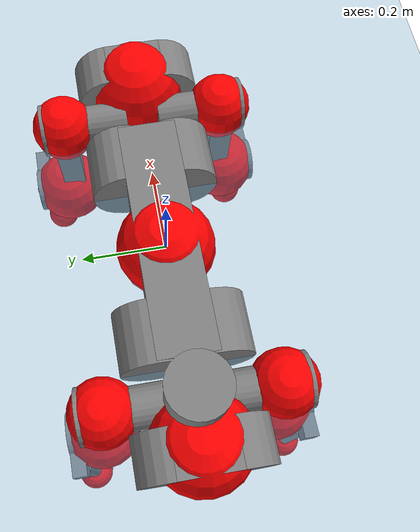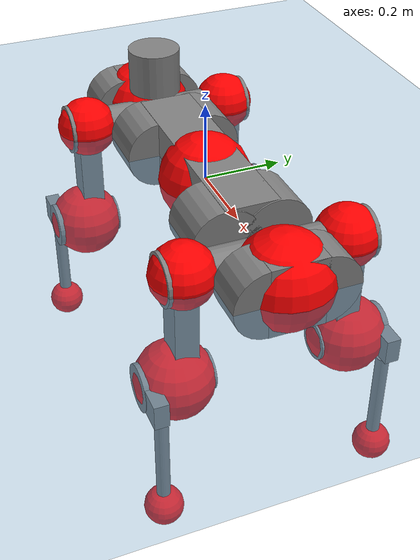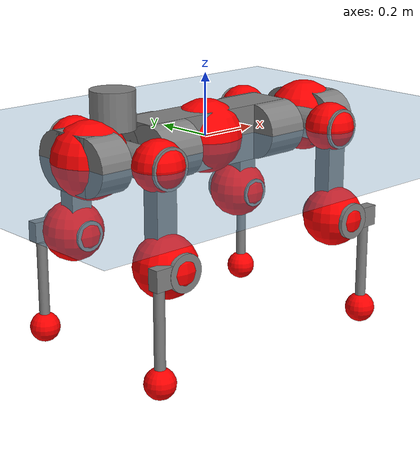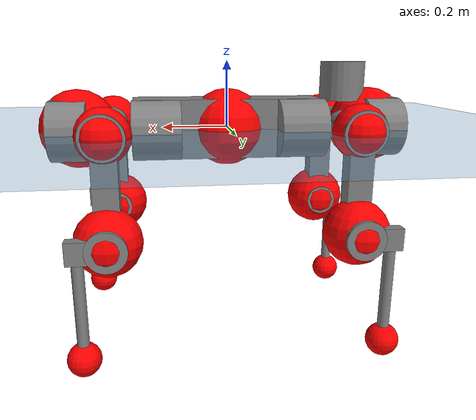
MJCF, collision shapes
<mujoco model="anymal_c">
  <compiler angle="radian" assetdir="assets" balanceinertia="true" inertiafromgeom="false"/>

  <option timestep="0.005" density="1.2" viscosity="2e-05"/>

  <size nkey="1"/>

  <visual>
    <quality shadowsize="8192"/>
    <map shadowclip="0.5"/>
  </visual>

  <default>
    <default class="/">
      <material specular="0" shininess="0.25"/>
      <geom contype="0" conaffinity="0" group="1" solref="-1000 -80"/>
      <site size="0.01 0.005 0.005" group="5"/>
      <general forcelimited="true" forcerange="-80 80" biastype="affine" gainprm="80" biasprm="0 -80 -2"/>
      <default class="anymal_c">
        <joint armature="0.01" damping="0.01" frictionloss="0.1"/>
        <default class="visual">
          <geom type="mesh" group="2"/>
          <default class="visual_zflip"/>
        </default>
        <default class="collision">
          <geom type="cylinder" group="3"/>
          <default class="foot">
            <geom size="0.03 0 0" type="sphere" condim="6" priority="1" friction="0.8 0.02 0.01" solimp="0.015 1 0.03"/>
          </default>
        </default>
      </default>
      <default class="reward_collision_sphere">
        <geom group="5" rgba="1 0 0 1"/>
      </default>
    </default>
  </default>

  <asset>
    <texture type="skybox" colorspace="auto" name="//unnamed_texture_0" builtin="gradient" rgb1="0.95 0.95 0.95" rgb2="0.95 0.95 0.95" width="100" height="600"/>
    <texture type="2d" colorspace="auto" name="texplane" builtin="checker" rgb1="0.345 0.575 0.748" rgb2="0.345 0.575 0.748" markrgb="1 1 1" width="512" height="512"/>
    <texture type="2d" colorspace="linear" name="base" file="base.png"/>
    <texture type="2d" colorspace="linear" name="top_shell" file="top_shell.png"/>
    <texture type="2d" colorspace="linear" name="bottom_shell" file="bottom_shell.png"/>
    <texture type="2d" colorspace="linear" name="remote" file="remote.png"/>
    <texture type="2d" colorspace="linear" name="hatch" file="hatch.png"/>
    <texture type="2d" colorspace="linear" name="handle" file="handle.png"/>
    <texture type="2d" colorspace="linear" name="face" file="face.png"/>
    <texture type="2d" colorspace="linear" name="battery" file="battery.png"/>
    <texture type="2d" colorspace="linear" name="lidar_cage" file="lidar_cage.png"/>
    <texture type="2d" colorspace="linear" name="depth_camera" file="depth_camera.png"/>
    <texture type="2d" colorspace="linear" name="wide_angle_camera" file="wide_angle_camera.png"/>
    <texture type="2d" colorspace="linear" name="lidar" file="lidar.png"/>
    <texture type="2d" colorspace="linear" name="drive" file="drive.png"/>
    <texture type="2d" colorspace="linear" name="hip_l" file="hip_l.png"/>
    <texture type="2d" colorspace="linear" name="shank_l" file="shank_l.png"/>
    <texture type="2d" colorspace="linear" name="foot" file="foot.png"/>
    <texture type="2d" colorspace="linear" name="thigh" file="thigh.png"/>
    <texture type="2d" colorspace="linear" name="shank_r" file="shank_r.png"/>
    <texture type="2d" colorspace="linear" name="hip_r" file="hip_r.png"/>
    <material name="MatPlane" class="/" texture="texplane" texuniform="true" texrepeat="2 2" specular="0.9" shininess="0.5"/>
    <material name="black_plastic" class="/" rgba="0.007 0.007 0.007 1"/>
    <material name="green" class="/" rgba="0.052 0.178 0.033 1"/>
    <material name="red" class="/" rgba="0.178 0.006 0.005 1"/>
    <material name="yellow" class="/" rgba="0.178 0.119 0.006 1"/>
    <material name="lwl" class="/" rgba="0.8 0.8 0.8 1"/>
    <material name="base" class="/" texture="base"/>
    <material name="top_shell" class="/" texture="top_shell"/>
    <material name="bottom_shell" class="/" texture="bottom_shell"/>
    <material name="hip_l" class="/" texture="hip_l"/>
    <material name="thigh" class="/" texture="thigh"/>
    <material name="shank_l" class="/" texture="shank_l"/>
    <material name="foot" class="/" texture="foot"/>
    <material name="hip_r" class="/" texture="hip_r"/>
    <material name="shank" class="/" texture="shank_r"/>
    <material name="hatch" class="/" texture="hatch"/>
    <material name="remote" class="/" texture="remote"/>
    <material name="handle" class="/" texture="handle"/>
    <material name="face" class="/" texture="face"/>
    <material name="depth_camera" class="/" texture="depth_camera"/>
    <material name="wide_angle_camera" class="/" texture="wide_angle_camera"/>
    <material name="battery" class="/" texture="battery"/>
    <material name="lidar_cage" class="/" texture="lidar_cage"/>
    <material name="lidar" class="/" texture="lidar"/>
    <material name="drive" class="/" texture="drive"/>
    <mesh name="base_0" class="/" file="base_0.obj"/>
    <mesh name="base_1" class="/" file="base_1.obj"/>
    <mesh name="base_2" class="/" file="base_2.obj"/>
    <mesh name="base_3" class="/" file="base_3.obj"/>
    <mesh name="base_4" class="/" file="base_4.obj"/>
    <mesh name="base_5" class="/" file="base_5.obj"/>
    <mesh name="top_shell" class="/" file="top_shell.obj"/>
    <mesh name="bottom_shell" class="/" file="bottom_shell.obj"/>
    <mesh name="remote" class="/" file="remote.obj"/>
    <mesh name="handle" class="/" file="handle.obj"/>
    <mesh name="face" class="/" file="face.obj"/>
    <mesh name="wide_angle_camera" class="/" file="wide_angle_camera.obj"/>
    <mesh name="depth_camera" class="/" file="depth_camera.obj"/>
    <mesh name="battery" class="/" file="battery.obj"/>
    <mesh name="lidar_cage" class="/" file="lidar_cage.obj"/>
    <mesh name="lidar" class="/" file="lidar.obj"/>
    <mesh name="drive" class="/" file="drive.obj"/>
    <mesh name="hip_l" class="/" file="hip_l.obj"/>
    <mesh name="thigh" class="/" file="thigh.obj"/>
    <mesh name="shank_l" class="/" file="shank_l.obj"/>
    <mesh name="foot" class="/" file="foot.obj"/>
    <mesh name="hip_r" class="/" file="hip_r.obj"/>
    <mesh name="hatch" class="/" file="hatch.obj"/>
    <mesh name="shank_r" class="/" file="shank_r.obj"/>
  </asset>

  <worldbody>
    <geom name="floor" class="/" size="100 100 0.125" type="plane" group="0" material="MatPlane"/>
    <light name="toplight_shadow" class="/" pos="0 0 5" dir="0.0990148 0.0990148 -0.990148" type="directional" ambient="0.04 0.04 0.04" diffuse="0.55 0.55 0.55" specular="0.12 0.12 0.12"/>
    <light name="toplight_fill" class="/" pos="0 0 5" dir="0.0990148 0.0990148 -0.990148" type="directional" castshadow="false" ambient="0.04 0.04 0.04" diffuse="0.3 0.3 0.3" specular="0.08 0.08 0.08"/>
    <body name="trunk" childclass="anymal_c" pos="-0.000286543 1.27052e-05 0.00027698" quat="1 -0.00021275 -5.68614e-05 -9.81371e-05">
      <inertial pos="0.00239721 -0.000173773 0.0510059" quat="0.501105 0.501911 0.497843 0.499131" mass="17.98" diaginertia="0.650321 0.390616 0.255398"/>
      <joint name="//unnamed_joint_0" type="free" armature="0" damping="0" frictionloss="0"/>
      <geom name="//unnamed_geom_1" class="visual" material="green" mesh="base_0"/>
      <geom name="//unnamed_geom_2" class="visual" material="yellow" mesh="base_1"/>
      <geom name="//unnamed_geom_3" class="visual" material="red" mesh="base_2"/>
      <geom name="//unnamed_geom_4" class="visual" material="black_plastic" mesh="base_3"/>
      <geom name="//unnamed_geom_5" class="visual" material="lwl" mesh="base_4"/>
      <geom name="//unnamed_geom_6" class="visual" material="base" mesh="base_5"/>
      <geom name="trunk_1" class="collision" size="0.285453 0.0689024 0.0885888" type="box"/>
      <geom name="trunk_2" class="collision" size="0.0885888 0.0713632" pos="0.218845 0.0639626 0" quat="0.707107 0 0.707107 0"/>
      <geom name="trunk_3" class="collision" size="0.0885888 0.0713632" pos="-0.218845 0.0639626 0" quat="0.707107 0 0.707107 0"/>
      <geom name="trunk_4" class="collision" size="0.0885888 0.0713632" pos="0.218845 -0.0639626 0" quat="0.707107 0 0.707107 0"/>
      <geom name="trunk_5" class="collision" size="0.0885888 0.0713632" pos="-0.218845 -0.0639626 0" quat="0.707107 0 0.707107 0"/>
      <geom name="//unnamed_geom_12" class="visual" material="top_shell" mesh="top_shell"/>
      <geom name="//unnamed_geom_13" class="visual" material="bottom_shell" mesh="bottom_shell"/>
      <geom name="//unnamed_geom_14" class="visual" material="remote" mesh="remote"/>
      <geom name="//unnamed_geom_15" class="visual" material="handle" mesh="handle"/>
      <geom name="//unnamed_geom_16" class="visual" pos="0.417063 0 0" quat="1 0 0 0" material="face" mesh="face"/>
      <geom name="trunk_6" class="collision" size="0.0541376 0.0689024 0.0885888" pos="0.472403 0 0" type="box"/>
      <geom name="//unnamed_geom_18" class="collision" size="0.0885888 0.0541376" pos="0.472403 0.0639626 0" quat="0.707107 0 0.707107 0"/>
      <geom name="//unnamed_geom_19" class="collision" size="0.0885888 0.0541376" pos="0.472403 -0.0639626 0" quat="0.707107 0 0.707107 0"/>
      <geom name="//unnamed_geom_20" class="visual" pos="0.464505 0 -0.0303683" quat="0.965926 0 0.258819 0" material="depth_camera" mesh="depth_camera"/>
      <geom name="//unnamed_geom_21" class="visual" pos="0.516172 0 0.0154644" material="wide_angle_camera" mesh="wide_angle_camera"/>
      <geom name="//unnamed_geom_22" class="visual_zflip" pos="-0.417063 0 0" quat="0 0 0 1" material="face" mesh="face"/>
      <geom name="trunk_7" class="collision" size="0.0541376 0.0689024 0.0885888" pos="-0.472403 0 0" quat="0 0 0 1" type="box"/>
      <geom name="//unnamed_geom_24" class="collision" size="0.0885888 0.0541376" pos="-0.472403 -0.0639626 0" quat="0 -0.707107 0 0.707107"/>
      <geom name="//unnamed_geom_25" class="collision" size="0.0885888 0.0541376" pos="-0.472403 0.0639626 0" quat="0 -0.707107 0 0.707107"/>
      <geom name="//unnamed_geom_26" class="visual" pos="-0.464505 0 -0.0303683" quat="0 -0.258819 0 0.965926" material="depth_camera" mesh="depth_camera"/>
      <geom name="//unnamed_geom_27" class="visual_zflip" pos="-0.516172 0 0.0154644" quat="0 0 0 1" material="wide_angle_camera" mesh="wide_angle_camera"/>
      <geom name="//unnamed_geom_28" class="visual" material="battery" mesh="battery"/>
      <geom name="//unnamed_geom_29" class="visual" pos="0 0.0686537 0.0298054" quat="0.683013 -0.183013 0.183013 0.683013" material="depth_camera" mesh="depth_camera"/>
      <geom name="//unnamed_geom_30" class="visual" pos="0 -0.0686537 0.0298054" quat="0.683013 0.183013 0.183013 -0.683013" material="depth_camera" mesh="depth_camera"/>
      <geom name="//unnamed_geom_31" class="visual" pos="-0.36625 0 0.0759273" quat="1 0 0 0" material="lidar_cage" mesh="lidar_cage"/>
      <geom name="trunk_8" class="collision" size="0.0689024 0.0590592" pos="-0.36625 0 0.137909"/>
      <geom name="//unnamed_geom_33" class="visual" pos="-0.36625 -3.63136e-05 0.146896" quat="0.707107 0 0 -0.707107" material="lidar" mesh="lidar"/>
      <geom name="//unnamed_geom_34" class="visual" pos="0.301754 0.0950725 -2.05748e-09" quat="0.258819 0.965926 0 0" material="drive" mesh="drive"/>
      <geom name="//unnamed_geom_35" class="visual" pos="0.301754 -0.0950725 2.05748e-09" quat="0.258819 -0.965926 0 0" material="drive" mesh="drive"/>
      <geom name="//unnamed_geom_36" class="visual" pos="-0.301754 0.0950725 2.05748e-09" quat="0 0 0.965926 -0.258819" material="drive" mesh="drive"/>
      <geom name="//unnamed_geom_37" class="visual" pos="-0.301754 -0.0950725 -2.05748e-09" quat="0 0 -0.965926 -0.258819" material="drive" mesh="drive"/>
      <geom name="//unnamed_geom_38" class="visual" pos="0.116717 0 0.0754108" quat="1 0 0 0" material="hatch" mesh="hatch"/>
      <geom name="//unnamed_geom_39" class="reward_collision_sphere" size="0.118118"/>
      <geom name="//unnamed_geom_40" class="reward_collision_sphere" size="0.118118" pos="0.452782 0 0"/>
      <geom name="//unnamed_geom_41" class="reward_collision_sphere" size="0.118118" pos="-0.452782 0 0"/>
      <site name="imu" pos="0.252707 0.00789231 0.046606" size="0.0098432"/>
      <camera name="track" pos="0 -1.8275 0" quat="0.707107 0.707107 0 0" mode="trackcom"/>
      <camera name="ego_camera" pos="0.452782 0 -0.041321" quat="-0.5 -0.5 0.5 0.5"/>
      <body name="LF_HIP" pos="0.302322 0.0952907 0.00105137" quat="0.258703 0.965957 -0.000184214 -6.88899e-05">
        <inertial pos="0.057066 -0.0137434 -0.00843751" quat="-0.128217 0.710249 -0.135075 0.678868" mass="2.63555" diaginertia="0.00600574 0.00316436 0.00387612"/>
        <joint name="LF_HAA" pos="0 0 0" axis="0.999979 0.00160369 0.0063457" range="-0.713755 0.490377" armature="0.00977863" damping="0.0117286" frictionloss="0.0961126"/>
        <geom name="//unnamed_geom_42" class="visual" pos="0 -0.000121032 1.98794e-05" quat="0.258819 -0.965926 0 0" material="hip_l" mesh="hip_l"/>
        <geom name="//unnamed_geom_43" class="visual" pos="0.0602703 -0.0718557 -0.0423681" quat="0.183013 -0.683013 0.683013 0.183013" material="drive" mesh="drive"/>
        <geom name="//unnamed_geom_44" class="collision" size="0.049216 0.0689024" pos="0.0602703 -0.0109283 -0.00713304" quat="-0.353553 -0.612372 0.612372 -0.353553"/>
        <body name="LF_THIGH" pos="0.0613855 -0.066843 -0.0429761" quat="0.182964 -0.68294 0.683085 0.183063">
          <inertial pos="0.0312009 0.000102717 -0.254183" quat="0.993257 -0.00503891 -0.0788518 0.0848409" mass="2.91622" diaginertia="0.0311641 0.0189718 0.00489611"/>
          <joint name="LF_HFE" pos="0 0 0" axis="0.999992 0.00310883 -0.00261817" range="-3.14242 3.13779" armature="0.00952818" damping="0.0128859" frictionloss="0.102199"/>
          <geom name="//unnamed_geom_45" class="visual" pos="0.00183901 2.89785e-06 0" quat="0.707107 0 0 -0.707107" material="thigh" mesh="thigh"/>
          <geom name="//unnamed_geom_46" class="collision" size="0.0639808 0.0393728" pos="0.0402473 0 0" quat="0.5 0.5 -0.5 -0.5"/>
          <geom name="//unnamed_geom_47" class="collision" size="0.036912 0.0295296 0.139098" pos="0.0301855 0 -0.145981" quat="0.707107 0 0 -0.707107" type="box"/>
          <geom name="//unnamed_geom_48" class="visual" pos="0.10092 0 -0.294412" quat="1 0 0 0" material="drive" mesh="drive"/>
          <geom name="//unnamed_geom_49" class="collision" size="0.049216 0.0689024" pos="0.0304873 0 -0.294412" quat="0.707107 0 0.707107 0"/>
          <geom name="//unnamed_geom_50" class="reward_collision_sphere" size="0.0787456" pos="0.0251546 0 0"/>
          <body name="LF_SHANK" pos="0.100976 -0.000897438 -0.295028" quat="1 0.000318797 0.00021157 -0.00025161">
            <inertial pos="0.0050302 -0.0563939 -0.0834549" quat="0.992931 -0.115939 -0.00111093 -0.0254162" mass="0.549687" diaginertia="0.0104779 0.00581389 0.00131205"/>
            <joint name="LF_KFE" pos="0 0 0" axis="0.999999 -0.00140418 -0.000224124" range="-3.14115 3.13623" armature="0.0097893" damping="0.0124562" frictionloss="0.0969725"/>
            <geom name="//unnamed_geom_51" class="visual" pos="0.000599661 0.00319742 0" quat="0.707107 0 0 -0.707107" material="shank_l" mesh="shank_l"/>
            <geom name="LF_kfe_act" class="collision" size="0.0590592 0.0196864" pos="0.0201236 0 0" quat="0.5 0.5 -0.5 -0.5"/>
            <geom name="//unnamed_geom_53" class="collision" size="0.0565974 0.0332208 0.0187021" pos="0.0201236 -0.0525398 0" quat="0.5 0.5 -0.5 -0.5" type="box"/>
            <geom name="//unnamed_geom_54" class="visual" pos="0.0131305 -0.079334 -0.349131" quat="0.382683 0 0 -0.92388" material="foot" mesh="foot"/>
            <geom name="LF_calf" class="collision" size="0.0172256 0.139037" pos="0.0131307 -0.0803644 -0.174566" quat="0.707107 0 0 -0.707107"/>
            <geom name="LF_foot" class="foot" size="0.0295223" pos="0.0131307 -0.0803644 -0.325888" quat="0.707107 0 0 -0.707107"/>
            <geom name="//unnamed_geom_57" class="reward_collision_sphere" size="0.098432" pos="-0.0503091 0 0"/>
            <geom name="//unnamed_geom_58" class="reward_collision_sphere" size="0.049216" pos="0.0131307 -0.0803644 -0.325888"/>
            <site name="LF_foot" class="foot" pos="0.0131307 -0.0803644 -0.325888" quat="0.707107 0 0 -0.707107" size="0.0098432"/>
          </body>
        </body>
      </body>
      <body name="RF_HIP" pos="0.302035 -0.0950696 0.000685021" quat="0.258828 -0.965923 -0.000210433 0.000143599">
        <inertial pos="0.0574956 0.0147106 -0.00857707" quat="0.138616 0.679557 0.12567 0.709363" mass="2.65608" diaginertia="0.00606686 0.00317398 0.00387666"/>
        <joint name="RF_HAA" pos="0 0 0" axis="1 -0.000144816 0.000256998" range="-0.493282 0.719278" armature="0.00985725" damping="0.00905064" frictionloss="0.101211"/>
        <geom name="//unnamed_geom_59" class="visual" pos="0 0.000121031 1.98794e-05" quat="0.258819 0.965926 0 0" material="hip_r" mesh="hip_r"/>
        <geom name="//unnamed_geom_60" class="visual" pos="0.0602703 0.0718557 -0.0423681" quat="0.183013 0.683013 0.683013 -0.183013" material="drive" mesh="drive"/>
        <geom name="//unnamed_geom_61" class="collision" size="0.049216 0.0689024" pos="0.0602703 0.0109283 -0.00713304" quat="-0.353553 0.612372 0.612372 0.353553"/>
        <body name="RF_THIGH" pos="0.0605847 0.0666827 -0.0441987" quat="0.182803 0.683012 0.683016 -0.183212">
          <inertial pos="0.0316261 0.000682766 -0.25314" quat="0.992811 -0.00524242 -0.080499 0.0884275" mass="2.94063" diaginertia="0.0311275 0.0191438 0.00494401"/>
          <joint name="RF_HFE" pos="0 0 0" axis="1 0.000945843 2.66404e-05" stiffness="0.00724935" range="-3.13943 3.12788" armature="0.009605" damping="0.0114276" frictionloss="0.0999909"/>
          <geom name="//unnamed_geom_62" class="visual" pos="0.00183901 2.89785e-06 0" quat="0.707107 0 0 -0.707107" material="thigh" mesh="thigh"/>
          <geom name="//unnamed_geom_63" class="collision" size="0.0639808 0.0393728" pos="0.0402473 0 0" quat="0.5 0.5 0.5 0.5"/>
          <geom name="//unnamed_geom_64" class="collision" size="0.036912 0.0295296 0.139098" pos="0.0301855 0 -0.145981" quat="0.707107 0 0 0.707107" type="box"/>
          <geom name="//unnamed_geom_65" class="visual" pos="0.10092 0 -0.294412" quat="1 0 0 0" material="drive" mesh="drive"/>
          <geom name="//unnamed_geom_66" class="collision" size="0.049216 0.0689024" pos="0.0304873 0 -0.294412" quat="0.707107 0 0.707107 0"/>
          <geom name="//unnamed_geom_67" class="reward_collision_sphere" size="0.0787456" pos="0.0251546 0 0"/>
          <body name="RF_SHANK" pos="0.100535 0.00055552 -0.295145" quat="1 0.000126734 -0.000183702 -4.88063e-05">
            <inertial pos="0.00657479 0.056892 -0.0836555" quat="0.993069 0.1147 -0.0013943 0.0256015" mass="0.564626" diaginertia="0.0104001 0.00584612 0.00132196"/>
            <joint name="RF_KFE" pos="0 0 0" axis="1 -0.000641484 0.000616042" range="-3.13369 3.14215" armature="0.00985629" damping="0.00810066" frictionloss="0.0966542"/>
            <geom name="//unnamed_geom_68" class="visual" pos="0.000599657 -0.00319742 0" quat="0.707107 0 0 0.707107" material="shank" mesh="shank_r"/>
            <geom name="RF_kfe_act" class="collision" size="0.0590592 0.0196864" pos="0.0201236 0 0" quat="0.5 0.5 0.5 0.5"/>
            <geom name="//unnamed_geom_70" class="collision" size="0.0565974 0.0332208 0.0187021" pos="0.0201236 0.0525398 0" quat="0.5 0.5 0.5 0.5" type="box"/>
            <geom name="//unnamed_geom_71" class="visual" pos="0.0131308 0.079334 -0.349131" quat="0.382683 0 0 0.92388" material="foot" mesh="foot"/>
            <geom name="RF_calf" class="collision" size="0.0172256 0.139037" pos="0.0131307 0.0803644 -0.174566" quat="0.707107 0 0 0.707107"/>
            <geom name="RF_foot" class="foot" size="0.0298413" pos="0.0131307 0.0803644 -0.325888" quat="0.707107 0 0 0.707107"/>
            <geom name="//unnamed_geom_74" class="reward_collision_sphere" size="0.098432" pos="-0.0503091 0 0"/>
            <geom name="//unnamed_geom_75" class="reward_collision_sphere" size="0.049216" pos="0.0131307 0.0803644 -0.325888"/>
            <site name="RF_foot" class="foot" pos="0.0131307 0.0803644 -0.325888" quat="0.707107 0 0 0.707107" size="0.0098432"/>
          </body>
        </body>
      </body>
      <body name="LH_HIP" pos="-0.300236 0.0958037 0.000660726" quat="5.12564e-05 -0.000103282 0.965896 -0.258929">
        <inertial pos="0.0572762 0.0130011 -0.00875408" quat="0.134841 0.677639 0.127875 0.711528" mass="2.67185" diaginertia="0.00601669 0.00314269 0.00390127"/>
        <joint name="LH_HAA" pos="0 0 0" axis="0.999999 -0.000949702 -0.000848194" range="-0.511336 0.721015" armature="0.00983266" damping="0.00887187" frictionloss="0.097294"/>
        <geom name="//unnamed_geom_76" class="visual" pos="0 0.000121031 1.98794e-05" quat="-0.258819 -0.965926 0 0" material="hip_r" mesh="hip_r"/>
        <geom name="//unnamed_geom_77" class="visual" pos="0.0602703 0.0718557 -0.0423681" quat="0.183013 0.683013 0.683013 -0.183013" material="drive" mesh="drive"/>
        <geom name="//unnamed_geom_78" class="collision" size="0.049216 0.0689024" pos="0.0602703 0.0109283 -0.00713304" quat="-0.353553 0.612372 0.612372 0.353553"/>
        <body name="LH_THIGH" pos="0.0592314 0.0659814 -0.0441289" quat="0.183033 0.682968 0.683026 -0.18311">
          <inertial pos="0.0314734 0.000108606 -0.253879" quat="0.99273 -0.00561779 -0.083675 0.0863314" mass="2.91147" diaginertia="0.0311988 0.0187858 0.00483505"/>
          <joint name="LH_HFE" pos="0 0 0" axis="0.999997 -0.000840134 -0.00244818" range="-3.15934 3.12264" armature="0.00978825" damping="0.00958357" frictionloss="0.0957961"/>
          <geom name="//unnamed_geom_79" class="visual" pos="0.00183901 2.89785e-06 0" quat="0.707107 0 0 -0.707107" material="thigh" mesh="thigh"/>
          <geom name="//unnamed_geom_80" class="collision" size="0.0639808 0.0393728" pos="0.0402473 0 0" quat="0.5 0.5 -0.5 -0.5"/>
          <geom name="//unnamed_geom_81" class="collision" size="0.036912 0.0295296 0.139098" pos="0.0301855 0 -0.145981" quat="0.707107 0 0 -0.707107" type="box"/>
          <geom name="//unnamed_geom_82" class="visual" pos="0.10092 0 -0.294412" quat="1 0 0 0" material="drive" mesh="drive"/>
          <geom name="//unnamed_geom_83" class="collision" size="0.049216 0.0689024" pos="0.0304873 0 -0.294412" quat="0.707107 0 0.707107 0"/>
          <geom name="//unnamed_geom_84" class="reward_collision_sphere" size="0.0787456" pos="0.0251546 0 0"/>
          <body name="LH_SHANK" pos="0.101629 -0.00138086 -0.295086" quat="1 0.000177482 -5.33232e-05 0.000377199">
            <inertial pos="0.00522977 0.0558882 -0.0824669" quat="0.993176 0.114253 0.00103026 0.0233825" mass="0.561308" diaginertia="0.0104405 0.00589871 0.00131762"/>
            <joint name="LH_KFE" pos="0 0 0" axis="0.999994 0.00320091 0.00145931" range="-3.13643 3.15785" armature="0.0100815" damping="0.00941734" frictionloss="0.102116"/>
            <geom name="//unnamed_geom_85" class="visual" pos="0.000599657 -0.00319742 0" quat="-0.707107 0 0 -0.707107" material="shank" mesh="shank_r"/>
            <geom name="LH_kfe_act" class="collision" size="0.0590592 0.0196864" pos="0.0201236 0 0" quat="0.5 0.5 -0.5 -0.5"/>
            <geom name="//unnamed_geom_87" class="collision" size="0.0565974 0.0332208 0.0187021" pos="0.0201236 0.0525398 0" quat="0.5 0.5 -0.5 -0.5" type="box"/>
            <geom name="//unnamed_geom_88" class="visual" pos="0.0131308 0.079334 -0.349131" quat="-0.382683 0 0 -0.92388" material="foot" mesh="foot"/>
            <geom name="LH_calf" class="collision" size="0.0172256 0.139037" pos="0.0131307 0.0803644 -0.174566" quat="0.707107 0 0 -0.707107"/>
            <geom name="LH_foot" class="foot" size="0.0317549" pos="0.0131307 0.0803644 -0.325888" quat="0.707107 0 0 -0.707107"/>
            <geom name="//unnamed_geom_91" class="reward_collision_sphere" size="0.098432" pos="-0.0503091 0 0"/>
            <geom name="//unnamed_geom_92" class="reward_collision_sphere" size="0.049216" pos="0.0131307 0.0803644 -0.325888"/>
            <site name="LH_foot" class="foot" pos="0.0131307 0.0803644 -0.325888" quat="0.707107 0 0 -0.707107" size="0.0098432"/>
          </body>
        </body>
      </body>
      <body name="RH_HIP" pos="-0.301953 -0.0949334 -0.000111418" quat="-6.95437e-05 -7.47437e-06 -0.965936 -0.258781">
        <inertial pos="0.05617 -0.0146532 -0.00875718" quat="-0.127139 0.709839 -0.135535 0.679408" mass="2.64509" diaginertia="0.00596246 0.00308823 0.003817"/>
        <joint name="RH_HAA" pos="0 0 0" axis="0.999995 0.000967928 0.00309067" range="-0.722052 0.496909" armature="0.00970467" damping="0.00856455" frictionloss="0.0994759"/>
        <geom name="//unnamed_geom_93" class="visual" pos="0 -0.000121032 1.98794e-05" quat="-0.258819 0.965926 0 0" material="hip_l" mesh="hip_l"/>
        <geom name="//unnamed_geom_94" class="visual" pos="0.0602703 -0.0718557 -0.0423681" quat="-0.183013 0.683013 -0.683013 -0.183013" material="drive" mesh="drive"/>
        <geom name="//unnamed_geom_95" class="collision" size="0.049216 0.0689024" pos="0.0602703 -0.0109283 -0.00713304" quat="0.353553 0.612372 -0.612372 0.353553"/>
        <body name="RH_THIGH" pos="0.0602989 -0.0663568 -0.0436989" quat="-0.183033 0.68288 -0.683144 -0.183">
          <inertial pos="0.0317072 0.00029948 -0.253293" quat="0.992983 -0.00572726 -0.0835228 0.0835255" mass="2.9127" diaginertia="0.0312192 0.0189143 0.00496626"/>
          <joint name="RH_HFE" pos="0 0 0" axis="0.999998 -0.00133227 0.00161713" range="-3.13752 3.14329" armature="0.00959489" damping="0.00803543" frictionloss="0.101005"/>
          <geom name="//unnamed_geom_96" class="visual" pos="0.00183901 2.89785e-06 0" quat="0.707107 0 0 -0.707107" material="thigh" mesh="thigh"/>
          <geom name="//unnamed_geom_97" class="collision" size="0.0639808 0.0393728" pos="0.0402473 0 0" quat="0.5 0.5 0.5 0.5"/>
          <geom name="//unnamed_geom_98" class="collision" size="0.036912 0.0295296 0.139098" pos="0.0301855 0 -0.145981" quat="0.707107 0 0 0.707107" type="box"/>
          <geom name="//unnamed_geom_99" class="visual" pos="0.10092 0 -0.294412" quat="1 0 0 0" material="drive" mesh="drive"/>
          <geom name="//unnamed_geom_100" class="collision" size="0.049216 0.0689024" pos="0.0304873 0 -0.294412" quat="0.707107 0 0.707107 0"/>
          <geom name="//unnamed_geom_101" class="reward_collision_sphere" size="0.0787456" pos="0.0251546 0 0"/>
          <body name="RH_SHANK" pos="0.100322 0.000411291 -0.294566" quat="1 -0.000141539 -1.6829e-05 3.65829e-05">
            <inertial pos="0.005947 -0.0562065 -0.0833076" quat="0.993004 -0.115406 -0.00029637 -0.0249718" mass="0.559366" diaginertia="0.0106354 0.00587258 0.00132301"/>
            <joint name="RH_KFE" pos="0 0 0" axis="0.999996 0.000745028 0.00262447" range="-3.13793 3.1363" armature="0.00980766" damping="0.0111866" frictionloss="0.0993027"/>
            <geom name="//unnamed_geom_102" class="visual" pos="0.000599661 0.00319742 0" quat="0.707107 0 0 -0.707107" material="shank_l" mesh="shank_l"/>
            <geom name="RH_kfe_act" class="collision" size="0.0590592 0.0196864" pos="0.0201236 0 0" quat="0.5 0.5 0.5 0.5"/>
            <geom name="//unnamed_geom_104" class="collision" size="0.0565974 0.0332208 0.0187021" pos="0.0201236 -0.0525398 0" quat="0.5 0.5 0.5 0.5" type="box"/>
            <geom name="//unnamed_geom_105" class="visual" pos="0.0131305 -0.079334 -0.349131" quat="0.382683 0 0 -0.92388" material="foot" mesh="foot"/>
            <geom name="RH_calf" class="collision" size="0.0172256 0.139037" pos="0.0131307 -0.0803644 -0.174566" quat="0.707107 0 0 0.707107"/>
            <geom name="RH_foot" class="foot" size="0.0273463" pos="0.0131307 -0.0803644 -0.325888" quat="0.707107 0 0 0.707107"/>
            <geom name="//unnamed_geom_108" class="reward_collision_sphere" size="0.098432" pos="-0.0503091 0 0"/>
            <geom name="//unnamed_geom_109" class="reward_collision_sphere" size="0.049216" pos="0.0131307 -0.0803644 -0.325888"/>
            <site name="RH_foot" class="foot" pos="0.0131307 -0.0803644 -0.325888" quat="0.707107 0 0 0.707107" size="0.0098432"/>
          </body>
        </body>
      </body>
    </body>
  </worldbody>

  <contact>
    <pair class="/" geom1="floor" geom2="LF_foot" name="//unnamed_contact_0"/>
    <pair class="/" geom1="floor" geom2="RF_foot" name="//unnamed_contact_1"/>
    <pair class="/" geom1="floor" geom2="LH_foot" name="//unnamed_contact_2"/>
    <pair class="/" geom1="floor" geom2="RH_foot" name="//unnamed_contact_3"/>
  </contact>

  <actuator>
    <general name="LF_HAA" class="/" joint="LF_HAA" forcerange="-79.3272 79.3272" gainprm="79.1256" biasprm="0 -79.1256 -1.89466"/>
    <general name="LF_HFE" class="/" joint="LF_HFE" forcerange="-80.5624 80.5624" gainprm="79.1256" biasprm="0 -79.1256 -1.89466"/>
    <general name="LF_KFE" class="/" joint="LF_KFE" forcerange="-77.9363 77.9363" gainprm="79.1256" biasprm="0 -79.1256 -1.89466"/>
    <general name="RF_HAA" class="/" joint="RF_HAA" forcerange="-78.9805 78.9805" gainprm="79.1256" biasprm="0 -79.1256 -1.89466"/>
    <general name="RF_HFE" class="/" joint="RF_HFE" forcerange="-80.9413 80.9413" gainprm="79.1256" biasprm="0 -79.1256 -1.89466"/>
    <general name="RF_KFE" class="/" joint="RF_KFE" forcerange="-76.4053 76.4053" gainprm="79.1256" biasprm="0 -79.1256 -1.89466"/>
    <general name="LH_HAA" class="/" joint="LH_HAA" forcerange="-79.3798 79.3798" gainprm="79.1256" biasprm="0 -79.1256 -1.89466"/>
    <general name="LH_HFE" class="/" joint="LH_HFE" forcerange="-76.53 76.53" gainprm="79.1256" biasprm="0 -79.1256 -1.89466"/>
    <general name="LH_KFE" class="/" joint="LH_KFE" forcerange="-81.0584 81.0584" gainprm="79.1256" biasprm="0 -79.1256 -1.89466"/>
    <general name="RH_HAA" class="/" joint="RH_HAA" forcerange="-78.9023 78.9023" gainprm="79.1256" biasprm="0 -79.1256 -1.89466"/>
    <general name="RH_HFE" class="/" joint="RH_HFE" forcerange="-79.7055 79.7055" gainprm="79.1256" biasprm="0 -79.1256 -1.89466"/>
    <general name="RH_KFE" class="/" joint="RH_KFE" forcerange="-77.4619 77.4619" gainprm="79.1256" biasprm="0 -79.1256 -1.89466"/>
  </actuator>

  <sensor>
    <gyro site="imu" name="imu_angular_velocity"/>
    <velocimeter site="imu" name="imu_linear_velocity"/>
    <framelinvel objtype="site" objname="LF_foot" name="LF_foot_global_linear_velocity"/>
    <framelinvel objtype="site" objname="RF_foot" name="RF_foot_global_linear_velocity"/>
    <framelinvel objtype="site" objname="LH_foot" name="LH_foot_global_linear_velocity"/>
    <framelinvel objtype="site" objname="RH_foot" name="RH_foot_global_linear_velocity"/>
  </sensor>

  <keyframe>
    <key name="home" qpos="0 0 0.55 1 0 0 0 0 0.4 -0.8 0 -0.4 0.8 0 -0.4 0.8 0 0.4 -0.8"/>
  </keyframe>
</mujoco>
